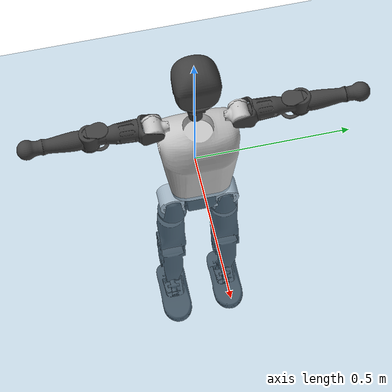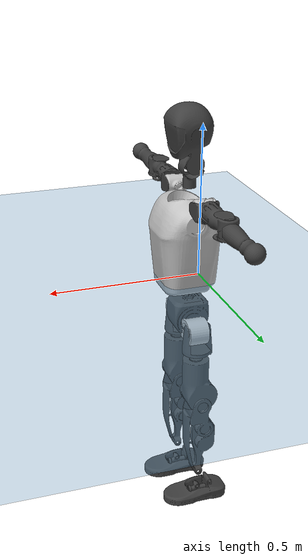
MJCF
<mujoco model="T1">
  <compiler angle="radian" assetdir="assets" balanceinertia="true" inertiafromgeom="false"/>

  <option timestep="0.005" density="1.2" viscosity="2e-05"/>

  <size nkey="1"/>

  <visual>
    <quality shadowsize="8192"/>
    <map shadowclip="0.5"/>
  </visual>

  <default>
    <default class="/">
      <joint armature="0.01" damping="0.01" frictionloss="0.1"/>
      <geom contype="0" conaffinity="0" group="1" solref="-1000 -80"/>
      <site size="0.01 0.005 0.005" group="5"/>
      <general forcelimited="true" biastype="affine" gainprm="25" biasprm="0 -25 -0.6"/>
      <default class="t1">
        <geom rgba="0.25 0.25 0.25 1"/>
        <default class="visual">
          <geom type="mesh" group="2"/>
        </default>
        <default class="collision">
          <geom group="3"/>
        </default>
        <default class="foot">
          <geom size="0.1115 0.05 0.015" type="box" condim="6" group="4" priority="1" solimp="0.015 1 0.015"/>
        </default>
        <default class="reward_collision_sphere">
          <geom group="5" rgba="1 0 0 1"/>
        </default>
      </default>
    </default>
  </default>

  <asset>
    <texture type="skybox" colorspace="auto" name="//unnamed_texture_0" builtin="gradient" rgb1="0.95 0.95 0.95" rgb2="0.95 0.95 0.95" width="100" height="600"/>
    <texture type="2d" colorspace="auto" name="texplane" builtin="checker" rgb1="0.345 0.575 0.748" rgb2="0.345 0.575 0.748" markrgb="1 1 1" width="512" height="512"/>
    <material name="MatPlane" class="/" texture="texplane" texuniform="true" texrepeat="2 2" specular="0.9"/>
    <mesh name="Trunk" class="/" file="Trunk.stl"/>
    <mesh name="H1" class="/" file="H1.stl"/>
    <mesh name="H2" class="/" file="H2.stl"/>
    <mesh name="AL1" class="/" file="AL1.stl"/>
    <mesh name="AL2" class="/" file="AL2.stl"/>
    <mesh name="AL3" class="/" file="AL3.stl"/>
    <mesh name="left_hand_link" class="/" file="left_hand_link.stl"/>
    <mesh name="AR1" class="/" file="AR1.stl"/>
    <mesh name="AR2" class="/" file="AR2.stl"/>
    <mesh name="AR3" class="/" file="AR3.stl"/>
    <mesh name="right_hand_link" class="/" file="right_hand_link.stl"/>
    <mesh name="Waist" class="/" file="Waist.stl"/>
    <mesh name="Hip_Pitch_Left" class="/" file="Hip_Pitch_Left.stl"/>
    <mesh name="Hip_Roll_Left" class="/" file="Hip_Roll_Left.stl"/>
    <mesh name="Hip_Yaw_Left" class="/" file="Hip_Yaw_Left.stl"/>
    <mesh name="Shank_Left" class="/" file="Shank_Left.stl"/>
    <mesh name="Ankle_Cross_Left" class="/" file="Ankle_Cross_Left.stl"/>
    <mesh name="left_foot_link" class="/" file="left_foot_link.stl"/>
    <mesh name="Hip_Pitch_Right" class="/" file="Hip_Pitch_Right.stl"/>
    <mesh name="Hip_Roll_Right" class="/" file="Hip_Roll_Right.stl"/>
    <mesh name="Hip_Yaw_Right" class="/" file="Hip_Yaw_Right.stl"/>
    <mesh name="Shank_Right" class="/" file="Shank_Right.stl"/>
    <mesh name="Ankle_Cross_Right" class="/" file="Ankle_Cross_Right.stl"/>
    <mesh name="right_foot_link" class="/" file="right_foot_link.stl"/>
  </asset>

  <worldbody>
    <geom name="floor" class="/" size="100 100 0.125" type="plane" group="0" material="MatPlane"/>
    <light name="toplight_shadow" class="/" pos="0 0 5" dir="0.0990148 0.0990148 -0.990148" type="directional" ambient="0.04 0.04 0.04" diffuse="0.55 0.55 0.55" specular="0.12 0.12 0.12"/>
    <light name="toplight_fill" class="/" pos="0 0 5" dir="0.0990148 0.0990148 -0.990148" type="directional" castshadow="false" ambient="0.04 0.04 0.04" diffuse="0.3 0.3 0.3" specular="0.08 0.08 0.08"/>
    <body name="trunk" childclass="t1" pos="0.00120978 -0.00228019 -0.000891587" quat="1 -9.2825e-05 -0.000803144 -0.000265827">
      <inertial pos="0.0330487 0.000820053 0.133018" quat="0.999919 -0.000911064 -0.0125887 -0.00145352" mass="7.95469" diaginertia="0.00702263 0.0244234 0.17465"/>
      <joint name="//unnamed_joint_0" type="free" armature="0" damping="0" frictionloss="0"/>
      <geom name="//unnamed_geom_1" class="visual" rgba="0.76 0.76 0.76 1" mesh="Trunk"/>
      <geom name="//unnamed_geom_2" class="collision" size="0.0662975 0.0883967 0.132595" pos="0.0360472 0 0.150072" type="box"/>
      <geom name="//unnamed_geom_3" class="reward_collision_sphere" size="0.101656" pos="0.0360472 0 0.12506"/>
      <geom name="//unnamed_geom_4" class="reward_collision_sphere" size="0.0132595" pos="0.0360472 0.0680438 0"/>
      <geom name="//unnamed_geom_5" class="reward_collision_sphere" size="0.0132595" pos="0.0360472 -0.0680438 0"/>
      <geom name="//unnamed_geom_6" class="reward_collision_sphere" size="0.0132595" pos="0.0360472 0.0856552 0.225108"/>
      <geom name="//unnamed_geom_7" class="reward_collision_sphere" size="0.0132595" pos="0.0360472 -0.0856552 0.225108"/>
      <site name="imu" pos="0.0230881 -0.0249694 0.0220113" size="0.00883967"/>
      <camera name="track" pos="0 -1.60103 0" quat="0.707107 0.707107 0 0" mode="trackcom"/>
      <camera name="ego_camera" pos="0.0732959 0 0.525252" quat="-0.5 -0.5 0.5 0.5"/>
      <body name="H1" pos="0.0373029 -0.00284835 0.301761" quat="0.999998 0.000626349 -0.00202529 -0.000183367">
        <inertial pos="-0.000639793 0.000388471 0.0736656" quat="0.767875 -0.0222342 -0.00235773 0.640209" mass="0.273785" diaginertia="1.8597e-05 7.23762e-05 0.000444621"/>
        <joint name="AAHead_yaw" pos="0 0 0" axis="-0.000131841 -0.000111808 1" range="-1.51904 1.56598" armature="0.00657911" damping="0.0197605" frictionloss="0.0869392"/>
        <geom name="//unnamed_geom_8" class="visual" mesh="H1"/>
        <body name="H2" pos="-0.00627684 0.000102941 0.0775335" quat="1 -0.000244764 1.49526e-06 -0.000208137">
          <inertial pos="0.00410374 0.00265722 0.122002" quat="0.988616 0.110387 -0.0770617 -0.067187" mass="0.4192" diaginertia="0.000158808 0.000618791 0.0052382"/>
          <joint name="Head_pitch" pos="0 0 0" axis="-0.00524041 -0.999982 0.00302475" range="-1.27087 0.35286" armature="0.00973917" damping="0.00205167" frictionloss="0.0786529"/>
          <geom name="//unnamed_geom_9" class="visual" mesh="H2"/>
          <geom name="//unnamed_geom_10" class="collision" size="0.0707174" pos="0.00600786 0 0.137566"/>
          <geom name="//unnamed_geom_11" class="reward_collision_sphere" size="0.079557" pos="0.0120157 0 0.12506"/>
        </body>
      </body>
      <body name="AL1" pos="0.0398453 0.0844379 0.276272" quat="1 0.000728538 0.000207295 -0.000497506">
        <inertial pos="-0.000144384 0.0332476 0.000108455" quat="0.49893 0.50579 -0.502739 0.492441" mass="0.373844" diaginertia="0.000106868 0.000417111 0.000879804"/>
        <joint name="Left_Shoulder_Pitch" pos="0 0 0" axis="0.00621596 0.99992 -0.0110461" range="-3.27887 1.18329" armature="0.00796622" damping="0.0119949" frictionloss="0.0905168"/>
        <geom name="//unnamed_geom_12" class="visual" rgba="0.76 0.76 0.76 1" mesh="AL1"/>
        <body name="AL2" pos="0.0020487 0.0388448 -0.00024592" quat="1 6.54746e-05 -6.20463e-05 0.000378185">
          <inertial pos="0.00465425 0.028052 -0.00345717" quat="0.492514 0.511277 -0.487038 0.508743" mass="0.104643" diaginertia="3.13048e-05 0.000117485 0.000537142"/>
          <joint name="Left_Shoulder_Roll" pos="0 0 0" axis="-0.999998 0.000613544 0.00174513" range="-1.66024 1.65349" armature="0.0106677" damping="0.00590198" frictionloss="0.0881872"/>
          <geom name="//unnamed_geom_13" class="visual" mesh="AL2"/>
          <body name="AL3" pos="-0.000675431 0.0462779 0.00343374" quat="0.999999 0.000861527 -0.00042785 0.000593046">
            <inertial pos="-0.00087195 0.0685562 -0.000860817" quat="0.706418 0.707786 0.00308081 -0.00191214" mass="0.667757" diaginertia="0.000998827 0.00407182 0.00197782"/>
            <joint name="Left_Elbow_Pitch" pos="0 0 0" axis="0.0225073 -0.999604 -0.0168734" stiffness="0.0286525" range="-2.36381 2.22225" armature="0.0114816" damping="0.0421195" frictionloss="0.094308"/>
            <geom name="//unnamed_geom_14" class="visual" mesh="AL3"/>
            <geom name="//unnamed_geom_15" class="collision" size="0.026519 0.0662975" pos="0 0.0400258 0" quat="0.707105 0.707108 0 0" type="cylinder"/>
            <geom name="//unnamed_geom_16" class="reward_collision_sphere" size="0.0318228"/>
            <body name="left_hand_link" pos="0.00217697 0.116015 -0.00298902" quat="1 -0.000129627 -0.000359918 -0.000295139">
              <inertial pos="-0.00141601 0.0901986 0.00101498" quat="0.707554 0.706659 6.69439e-05 -0.000432144" mass="0.230241" diaginertia="0.000607443 0.00256346 0.000681402"/>
              <joint name="Left_Elbow_Yaw" pos="0 0 0" axis="-0.00282315 -0.00282681 0.999992" range="-2.45929 0.0304815" armature="0.00667071" damping="0.0168512" frictionloss="0.0884835"/>
              <geom name="//unnamed_geom_17" class="visual" mesh="left_hand_link"/>
              <geom name="//unnamed_geom_18" class="collision" size="0.026519 0.0773471" pos="0 0.104067 0" quat="0.707105 0.707108 0 0" type="cylinder"/>
              <geom name="//unnamed_geom_19" class="reward_collision_sphere" size="0.0441983"/>
              <geom name="//unnamed_geom_20" class="reward_collision_sphere" size="0.0309388" pos="0 0.0880567 0"/>
              <geom name="//unnamed_geom_21" class="reward_collision_sphere" size="0.0309388" pos="0 0.172111 0"/>
            </body>
          </body>
        </body>
      </body>
      <body name="AR1" pos="0.0372084 -0.0845534 0.273528" quat="0.999999 0.000756153 0.000870629 -0.000797381">
        <inertial pos="0.00371781 -0.03447 -0.00140298" quat="0.497557 0.502611 -0.484993 0.514394" mass="0.372439" diaginertia="0.0001072 0.000426404 0.000851989"/>
        <joint name="Right_Shoulder_Pitch" pos="0 0 0" axis="-0.00754015 -0.999956 0.00553311" range="-1.22058 3.29574" armature="0.00897697" damping="6.72373e-05" frictionloss="0.093959"/>
        <geom name="//unnamed_geom_22" class="visual" rgba="0.76 0.76 0.76 1" mesh="AR1"/>
        <body name="AR2" pos="-0.00243088 -0.0392495 -0.00103943" quat="1 -0.000275642 -0.000856749 0.000247809">
          <inertial pos="0.00447679 -0.0281504 0.000918124" quat="0.511671 0.48793 -0.511883 0.487948" mass="0.108447" diaginertia="3.20862e-05 0.000108668 0.000542023"/>
          <joint name="Right_Shoulder_Roll" pos="0 0 0" axis="-0.999963 -0.00736663 0.00441207" range="-1.73005 1.47018" armature="0.0095458" damping="0.00345001" frictionloss="0.0989097"/>
          <geom name="//unnamed_geom_23" class="visual" mesh="AR2"/>
          <body name="AR3" pos="-0.00218829 -0.0514775 0.00306977" quat="1 -3.54566e-05 0.000350612 0.000326207">
            <inertial pos="0.000758561 -0.0639798 -0.00233314" quat="0.712097 0.702065 -0.00158311 -0.00435988" mass="0.719114" diaginertia="0.00100738 0.00425186 0.00183414"/>
            <joint name="Right_Elbow_Pitch" pos="0 0 0" axis="-0.00286918 0.999986 -0.00453024" stiffness="0.00551635" range="-2.27548 2.30104" armature="0.00868522" damping="0" frictionloss="0.0895571"/>
            <geom name="//unnamed_geom_24" class="visual" mesh="AR3"/>
            <geom name="//unnamed_geom_25" class="collision" size="0.026519 0.0662975" pos="0 -0.0400258 0" quat="0.707105 0.707108 0 0" type="cylinder"/>
            <geom name="//unnamed_geom_26" class="reward_collision_sphere" size="0.0318228"/>
            <body name="right_hand_link" pos="-0.00272227 -0.117329 -0.00205916" quat="1 -3.63825e-05 0.000542748 -9.34163e-05">
              <inertial pos="-0.000557379 -0.0903748 0.00298454" quat="0.701449 0.712691 -0.00614513 0.00186347" mass="0.22121" diaginertia="0.000658378 0.00266786 0.000668796"/>
              <joint name="Right_Elbow_Yaw" pos="0 0 0" axis="-0.00981443 0.00816305 0.999919" range="0.0465377 2.44026" armature="0.0100539" damping="0" frictionloss="0.0842647"/>
              <geom name="//unnamed_geom_27" class="visual" mesh="right_hand_link"/>
              <geom name="//unnamed_geom_28" class="collision" size="0.026519 0.0773471" pos="0 -0.104067 0" quat="0.707105 0.707108 0 0" type="cylinder"/>
              <geom name="//unnamed_geom_29" class="reward_collision_sphere" size="0.0441983"/>
              <geom name="//unnamed_geom_30" class="reward_collision_sphere" size="0.0309388" pos="0 -0.0880567 0"/>
              <geom name="//unnamed_geom_31" class="reward_collision_sphere" size="0.0309388" pos="0 -0.172111 0"/>
            </body>
          </body>
        </body>
      </body>
      <body name="Waist" pos="0.0336284 0.0029408 -0.144515" quat="1 -0.0001123 0.000442105 1.20534e-05">
        <inertial pos="0.00781003 -0.00162436 0.00888645" quat="0.984448 -0.00148965 -0.175315 0.0111702" mass="1.6943" diaginertia="0.000437959 0.00165171 0.0142941"/>
        <joint name="Waist" pos="0 0 0" axis="0.0248738 0.00332014 0.999685" range="-1.53075 1.53424" armature="0.00848059" damping="0" frictionloss="0.0892024"/>
        <geom name="//unnamed_geom_32" class="visual" mesh="Waist"/>
        <body name="Hip_Pitch_Left" pos="0.0045334 0.084014 -0.00121214" quat="0.999995 0.00295481 0.00119118 -0.000250262">
          <inertial pos="0.00244945 -0.0105852 -0.0237737" quat="0.974894 0.222185 0.0145036 -0.00243267" mass="0.757915" diaginertia="0.000151048 0.000495161 0.00383384"/>
          <joint name="Left_Hip_Pitch" pos="0 0 0" axis="-0.00715486 0.999938 0.00854056" stiffness="0.00903091" range="-1.85196 1.58761" armature="0.00982415" damping="0" frictionloss="0.0657685"/>
          <geom name="//unnamed_geom_33" class="visual" rgba="0.76 0.76 0.76 1" mesh="Hip_Pitch_Left"/>
          <body name="Hip_Roll_Left" pos="-0.00553672 0.000247562 -0.0188837" quat="0.999995 0.00320992 0.000386123 0.000588922">
            <inertial pos="2.28137e-05 -0.00118501 -0.0627835" quat="0.70209 -0.000643591 -0.010586 0.712009" mass="0.275451" diaginertia="0.000135965 0.000523499 0.00161803"/>
            <joint name="Left_Hip_Roll" pos="0 0 0" axis="-0.999906 0.0119855 0.00671247" stiffness="0.0074139" range="-1.56896 0.211978" armature="0.00836474" damping="0" frictionloss="0.0898897"/>
            <geom name="//unnamed_geom_34" class="visual" mesh="Hip_Roll_Left"/>
            <geom name="//unnamed_geom_35" class="reward_collision_sphere" size="0.0486182"/>
            <body name="Hip_Yaw_Left" pos="0.00169862 0.00180999 -0.102429" quat="1 -0.000735798 0.000352036 -0.000200541">
              <inertial pos="-0.00349649 -0.00632646 -0.115871" quat="0.695339 -0.0233514 -0.0300556 0.717673" mass="1.41603" diaginertia="0.00190299 0.00785894 0.00769337"/>
              <joint name="Left_Hip_Yaw" pos="0 0 0" axis="0.00766725 -0.00389782 -0.999963" range="-1.03448 0.99272" armature="0.00873478" damping="0" frictionloss="0.0847768"/>
              <geom name="//unnamed_geom_36" class="visual" mesh="Hip_Yaw_Left"/>
              <geom name="//unnamed_geom_37" class="collision" size="0.0441983 0.0707174" type="cylinder"/>
              <body name="Shank_Left" pos="-0.0121226 0.00364299 -0.167536" quat="0.999999 0.00018315 -0.000847237 -0.000723243">
                <inertial pos="-0.00376594 0.00110019 -0.154139" quat="0.996838 -0.0111238 -0.0378235 0.0689966" mass="1.12335" diaginertia="0.00265828 0.0110468 0.00549105"/>
                <joint name="Left_Knee_Pitch" pos="0 0 0" axis="-0.00725014 0.999941 -0.00812694" range="-0.00114022 2.40149" armature="0.0079567" damping="0.00323066" frictionloss="0.0896298"/>
                <geom name="//unnamed_geom_38" class="visual" mesh="Shank_Left"/>
                <geom name="//unnamed_geom_39" class="collision" size="0.0441983 0.0662975" pos="0 0 -0.150072" type="cylinder"/>
                <geom name="//unnamed_geom_40" class="reward_collision_sphere" size="0.0574579"/>
                <body name="Ankle_Cross_Left" pos="-0.000308541 0.00184687 -0.349023" quat="1 0.000498304 -0.000179798 0.000282181">
                  <inertial pos="-0.00412773 0.00149042 -0.0080392" quat="0.450689 0.547144 0.551512 0.439713" mass="0.0520854" diaginertia="2.27421e-06 8.6876e-06 3.56709e-05"/>
                  <joint name="Left_Ankle_Pitch" pos="0 0 0" axis="-0.000292649 0.999999 0.00138694" range="-0.771311 0.254356" armature="0.00861563" damping="0.0371637" frictionloss="0.0872751"/>
                  <geom name="//unnamed_geom_41" class="visual" mesh="Ankle_Cross_Left"/>
                  <body name="left_foot_link" pos="-0.000263491 -0.000590474 -0.011415" quat="0.999997 0.00191795 0.000594872 0.00143387">
                    <inertial pos="-0.00259902 0.00290535 -0.00954574" quat="0.0103418 0.618411 0.00164445 0.785785" mass="0.430276" diaginertia="0.00019107 0.000725596 0.00567646"/>
                    <joint name="Left_Ankle_Roll" pos="0 0 0" axis="-0.999883 0.01197 0.00948243" range="-0.434264 0.335633" armature="0.00846154" damping="0.00640784" frictionloss="0.0590017"/>
                    <geom name="//unnamed_geom_42" class="visual" mesh="left_foot_link"/>
                    <geom name="left_foot" class="foot" size="0.104913 0.0533015 0.00993679" pos="0.00600786 0 -0.018759"/>
                    <geom name="//unnamed_geom_44" class="reward_collision_sphere" size="0.0459663" pos="0.00600786 0 -0.018759"/>
                    <geom name="//unnamed_geom_45" class="reward_collision_sphere" size="0.026519" pos="0.0570747 -0.0184119 -0.018759"/>
                    <geom name="//unnamed_geom_46" class="reward_collision_sphere" size="0.026519" pos="-0.042055 -0.0184119 -0.018759"/>
                    <site name="left_foot" class="foot" pos="0.00600786 0 -0.018759" size="0.00883967"/>
                  </body>
                </body>
              </body>
            </body>
          </body>
        </body>
        <body name="Hip_Pitch_Right" pos="-0.000225324 -0.0852924 0.000843858" quat="1 0.000642584 -0.000540341 -0.000227221">
          <inertial pos="-0.00120944 0.00548721 -0.0232311" quat="0.976175 -0.215128 0.0225002 0.0171963" mass="0.742028" diaginertia="0.000150656 0.000518381 0.00400148"/>
          <joint name="Right_Hip_Pitch" pos="0 0 0" axis="0.00437656 -0.999972 -0.00614948" stiffness="0.00421591" range="-1.54692 1.79569" armature="0.00927953" damping="0.0070177" frictionloss="0.0865227"/>
          <geom name="//unnamed_geom_47" class="visual" rgba="0.76 0.76 0.76 1" mesh="Hip_Pitch_Right"/>
          <body name="Hip_Roll_Right" pos="-0.00160015 -0.000146418 -0.020578" quat="0.999999 -0.000999598 0.000334896 -6.08469e-05">
            <inertial pos="-0.000744917 -0.000645495 -0.0669542" quat="0.707161 0.00220371 -0.00920169 0.706989" mass="0.28155" diaginertia="0.000142165 0.000521807 0.00168934"/>
            <joint name="Right_Hip_Roll" pos="0 0 0" axis="-0.999898 0.00345441 0.0138419" stiffness="0.0386308" range="-0.252382 1.58487" armature="0.00882178" damping="0.0055916" frictionloss="0.0856316"/>
            <geom name="//unnamed_geom_48" class="visual" mesh="Hip_Roll_Right"/>
            <geom name="//unnamed_geom_49" class="reward_collision_sphere" size="0.0486182"/>
            <body name="Hip_Yaw_Right" pos="0.0030199 -0.0061337 -0.103368" quat="1 0.000329418 -4.98582e-05 0.000189387">
              <inertial pos="-0.00233914 -0.000303897 -0.106159" quat="0.710292 -0.0389674 -0.041899 0.701578" mass="1.48817" diaginertia="0.00209842 0.00881194 0.00839896"/>
              <joint name="Right_Hip_Yaw" pos="0 0 0" axis="-0.0118279 -0.0102256 -0.999878" range="-1.07085 1.00317" armature="0.00973666" damping="0" frictionloss="0.0894284"/>
              <geom name="//unnamed_geom_50" class="visual" mesh="Hip_Yaw_Right"/>
              <geom name="//unnamed_geom_51" class="collision" size="0.0441983 0.0707174" type="cylinder"/>
              <body name="Shank_Right" pos="-0.00731404 -0.00215292 -0.168865" quat="1 2.59121e-05 3.53938e-06 1.10242e-05">
                <inertial pos="-0.0100157 0.00281723 -0.154525" quat="0.999501 0.00509427 -0.0255416 -0.0178467" mass="1.29865" diaginertia="0.00284861 0.0113989 0.00625668"/>
                <joint name="Right_Knee_Pitch" pos="0 0 0" axis="0.00611541 -0.999937 -0.00942054" range="-2.35188 0.039634" armature="0.00864315" damping="0.0104793" frictionloss="0.0789366"/>
                <geom name="//unnamed_geom_52" class="visual" mesh="Shank_Right"/>
                <geom name="//unnamed_geom_53" class="collision" size="0.0441983 0.0662975" pos="0 0 -0.150072" type="cylinder"/>
                <geom name="//unnamed_geom_54" class="reward_collision_sphere" size="0.0574579"/>
                <body name="Ankle_Cross_Right" pos="-0.000890841 0.00508162 -0.350945" quat="0.999997 -0.00103003 -0.00194742 -0.000616644">
                  <inertial pos="-0.00475952 -0.000517596 -0.0123176" quat="0.442201 0.552355 0.549838 0.443892" mass="0.0509967" diaginertia="2.38226e-06 8.53702e-06 3.40004e-05"/>
                  <joint name="Right_Ankle_Pitch" pos="0 0 0" axis="-5.10322e-05 -0.999966 -0.00819214" stiffness="0.00150167" range="-0.364816 0.764984" armature="0.0081274" damping="0" frictionloss="0.0870188"/>
                  <geom name="//unnamed_geom_55" class="visual" mesh="Ankle_Cross_Right"/>
                  <body name="right_foot_link" pos="0.0011824 0.000448289 -0.014299" quat="0.999999 0.00107832 -0.000333189 0.000222366">
                    <inertial pos="0.00200507 -0.00204149 -0.0111115" quat="0.0057064 0.626174 0.00470423 0.779649" mass="0.476317" diaginertia="0.00022472 0.000797744 0.00657481"/>
                    <joint name="Right_Ankle_Roll" pos="0 0 0" axis="-0.99995 -0.00992405 0.000813739" range="-0.440777 0.426837" armature="0.00963704" damping="0.0174554" frictionloss="0.098927"/>
                    <geom name="//unnamed_geom_56" class="visual" mesh="right_foot_link"/>
                    <geom name="right_foot" class="foot" size="0.0880197 0.0500802 0.0121946" pos="0.00600786 0 -0.018759"/>
                    <geom name="//unnamed_geom_58" class="reward_collision_sphere" size="0.0353587"/>
                    <geom name="//unnamed_geom_59" class="reward_collision_sphere" size="0.026519" pos="0.00600786 0 -0.018759"/>
                    <geom name="//unnamed_geom_60" class="reward_collision_sphere" size="0.026519" pos="0.0570747 0.0184119 -0.018759"/>
                    <geom name="//unnamed_geom_61" class="reward_collision_sphere" size="0.026519" pos="-0.042055 0.0184119 -0.018759"/>
                    <site name="right_foot" class="foot" pos="0.00600786 0 -0.018759" size="0.00883967"/>
                  </body>
                </body>
              </body>
            </body>
          </body>
        </body>
      </body>
    </body>
  </worldbody>

  <contact>
    <pair class="/" geom1="floor" geom2="left_foot" name="//unnamed_contact_0"/>
    <pair class="/" geom1="floor" geom2="right_foot" name="//unnamed_contact_1"/>
  </contact>

  <actuator>
    <general name="AAHead_yaw" class="/" joint="AAHead_yaw" forcerange="-5.72524 5.72524" gainprm="24.7257" biasprm="0 -24.7257 -0.546928"/>
    <general name="Head_pitch" class="/" joint="Head_pitch" forcerange="-6.74035 6.74035" gainprm="24.7257" biasprm="0 -24.7257 -0.546928"/>
    <general name="Left_Shoulder_Pitch" class="/" joint="Left_Shoulder_Pitch" forcerange="-17.0913 17.0913" gainprm="24.7257" biasprm="0 -24.7257 -0.546928"/>
    <general name="Left_Shoulder_Roll" class="/" joint="Left_Shoulder_Roll" forcerange="-15.7391 15.7391" gainprm="24.7257" biasprm="0 -24.7257 -0.546928"/>
    <general name="Left_Elbow_Pitch" class="/" joint="Left_Elbow_Pitch" forcerange="-18.9984 18.9984" gainprm="24.7257" biasprm="0 -24.7257 -0.546928"/>
    <general name="Left_Elbow_Yaw" class="/" joint="Left_Elbow_Yaw" forcerange="-13.7685 13.7685" gainprm="24.7257" biasprm="0 -24.7257 -0.546928"/>
    <general name="Right_Shoulder_Pitch" class="/" joint="Right_Shoulder_Pitch" forcerange="-13.4884 13.4884" gainprm="24.7257" biasprm="0 -24.7257 -0.546928"/>
    <general name="Right_Shoulder_Roll" class="/" joint="Right_Shoulder_Roll" forcerange="-15.0691 15.0691" gainprm="24.7257" biasprm="0 -24.7257 -0.546928"/>
    <general name="Right_Elbow_Pitch" class="/" joint="Right_Elbow_Pitch" forcerange="-16.0446 16.0446" gainprm="24.7257" biasprm="0 -24.7257 -0.546928"/>
    <general name="Right_Elbow_Yaw" class="/" joint="Right_Elbow_Yaw" forcerange="-15.4853 15.4853" gainprm="24.7257" biasprm="0 -24.7257 -0.546928"/>
    <general name="Waist" class="/" joint="Waist" forcerange="-25.531 25.531" gainprm="24.7257" biasprm="0 -24.7257 -0.546928"/>
    <general name="Left_Hip_Pitch" class="/" joint="Left_Hip_Pitch" forcerange="-37.6465 37.6465" gainprm="24.7257" biasprm="0 -24.7257 -0.546928"/>
    <general name="Left_Hip_Roll" class="/" joint="Left_Hip_Roll" forcerange="-22.4268 22.4268" gainprm="24.7257" biasprm="0 -24.7257 -0.546928"/>
    <general name="Left_Hip_Yaw" class="/" joint="Left_Hip_Yaw" forcerange="-31.7559 31.7559" gainprm="24.7257" biasprm="0 -24.7257 -0.546928"/>
    <general name="Left_Knee_Pitch" class="/" joint="Left_Knee_Pitch" forcerange="-63.2499 63.2499" gainprm="24.7257" biasprm="0 -24.7257 -0.546928"/>
    <general name="Left_Ankle_Pitch" class="/" joint="Left_Ankle_Pitch" forcerange="-17.4935 17.4935" gainprm="24.7257" biasprm="0 -24.7257 -0.546928"/>
    <general name="Left_Ankle_Roll" class="/" joint="Left_Ankle_Roll" forcerange="-13.4477 13.4477" gainprm="24.7257" biasprm="0 -24.7257 -0.546928"/>
    <general name="Right_Hip_Pitch" class="/" joint="Right_Hip_Pitch" forcerange="-42.8221 42.8221" gainprm="24.7257" biasprm="0 -24.7257 -0.546928"/>
    <general name="Right_Hip_Roll" class="/" joint="Right_Hip_Roll" forcerange="-26.8183 26.8183" gainprm="24.7257" biasprm="0 -24.7257 -0.546928"/>
    <general name="Right_Hip_Yaw" class="/" joint="Right_Hip_Yaw" forcerange="-26.9805 26.9805" gainprm="24.7257" biasprm="0 -24.7257 -0.546928"/>
    <general name="Right_Knee_Pitch" class="/" joint="Right_Knee_Pitch" forcerange="-54.2307 54.2307" gainprm="24.7257" biasprm="0 -24.7257 -0.546928"/>
    <general name="Right_Ankle_Pitch" class="/" joint="Right_Ankle_Pitch" forcerange="-19.7808 19.7808" gainprm="24.7257" biasprm="0 -24.7257 -0.546928"/>
    <general name="Right_Ankle_Roll" class="/" joint="Right_Ankle_Roll" forcerange="-13.3919 13.3919" gainprm="24.7257" biasprm="0 -24.7257 -0.546928"/>
  </actuator>

  <sensor>
    <gyro site="imu" name="imu_angular_velocity"/>
    <velocimeter site="imu" name="imu_linear_velocity"/>
    <framelinvel objtype="site" objname="left_foot" name="left_foot_global_linear_velocity"/>
    <framelinvel objtype="site" objname="right_foot" name="right_foot_global_linear_velocity"/>
  </sensor>

  <keyframe>
    <key name="home" qpos="0 0 0.6385 1 0 0 0 0 0 0 1.4 0 -0.4 0 -1.4 0 0.4 0 -0.4 0 0 0.8 -0.4 0 0.4 0 0 -0.8 0.4 0"/>
  </keyframe>
</mujoco>
